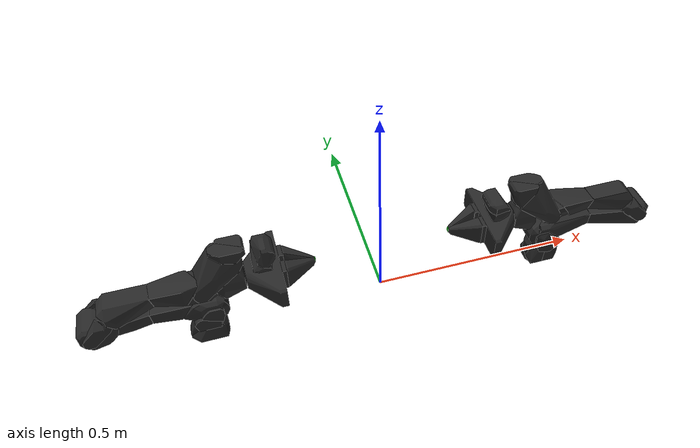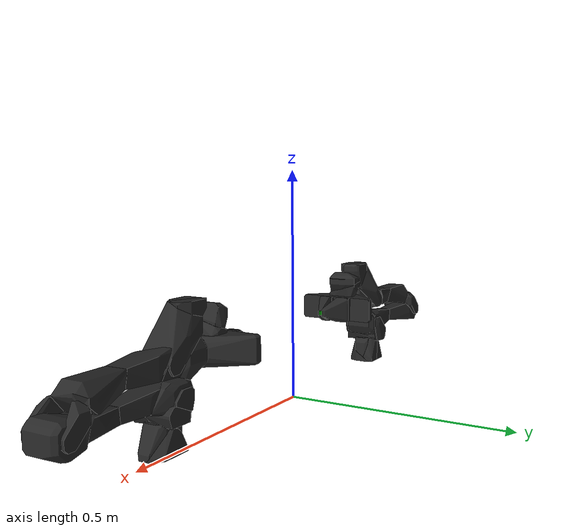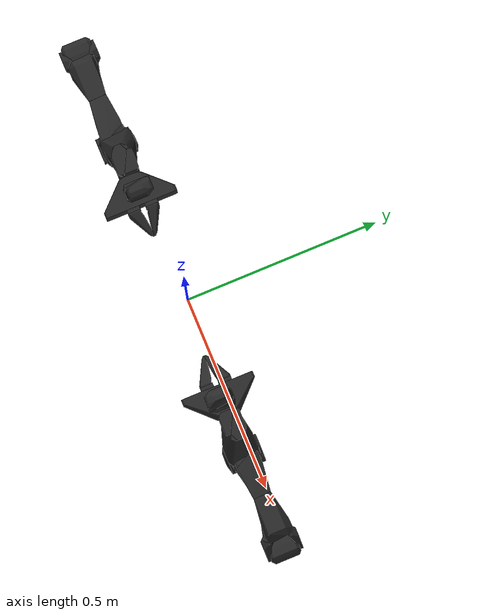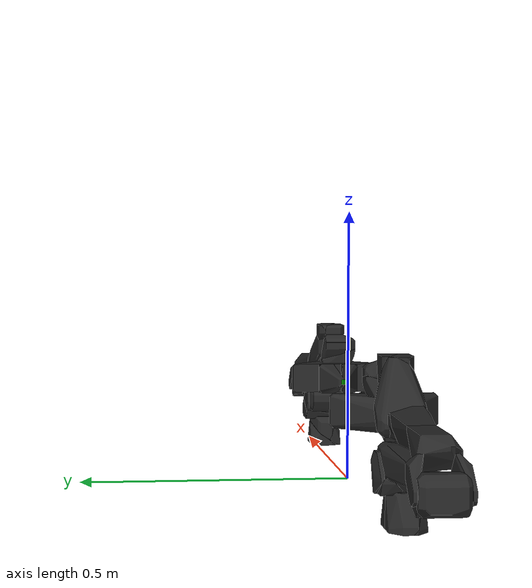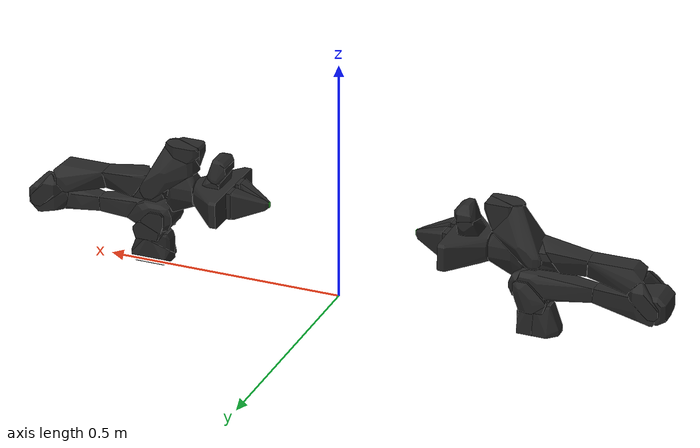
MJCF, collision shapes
<mujoco model="wxai_biarm">
  <compiler angle="radian"/>

  <size nkey="2"/>

  <visual>
    <headlight ambient="0.3 0.3 0.3" diffuse="0.8 0.8 0.8" specular="0 0 0"/>
    <scale forcewidth="0.03" contactwidth="0.05" contactheight="0.02"/>
  </visual>

  <default>
    <mesh maxhullvert="64"/>
    <default class="left/main">
      <default class="left/visual">
        <geom type="mesh" contype="0" conaffinity="0" group="1" density="0" material="trossen_material"/>
      </default>
      <default class="left/collision">
        <geom type="mesh" group="3" friction="1 0.005 0.0005" solref="0.01" rgba="0.15 0.15 0.15 1"/>
        <default class="left/gripper_collision">
          <geom condim="6"/>
        </default>
      </default>
    </default>
    <default class="right/main">
      <default class="right/visual">
        <geom type="mesh" contype="0" conaffinity="0" group="1" density="0" material="trossen_material"/>
      </default>
      <default class="right/collision">
        <geom type="mesh" group="3" friction="1 0.005 0.0005" solref="0.01" rgba="0.15 0.15 0.15 1"/>
        <default class="right/gripper_collision">
          <geom condim="6"/>
        </default>
      </default>
    </default>
  </default>

  <asset>
    <texture type="2d" colorspace="linear" name="left/trossen_BaseColor"
      file="assets/materials/1k_textures/trossen_BaseColor.png"/>
    <texture type="2d" colorspace="linear" name="right/trossen_BaseColor"
      file="assets/materials/1k_textures/trossen_BaseColor.png"/>
    <material name="left/trossen_material" texture="left/trossen_BaseColor"/>
    <material name="right/trossen_material" texture="right/trossen_BaseColor"/>
    <mesh name="left/base_link" content_type="model/obj" file="assets/meshes/wxai/base_link.obj"/>
    <mesh name="left/link_1" content_type="model/obj" file="assets/meshes/wxai/link_1.obj"/>
    <mesh name="left/link_2" content_type="model/obj" file="assets/meshes/wxai/link_2.obj"/>
    <mesh name="left/link_3" content_type="model/obj" file="assets/meshes/wxai/link_3.obj"/>
    <mesh name="left/link_4" content_type="model/obj" file="assets/meshes/wxai/link_4.obj"/>
    <mesh name="left/link_5" content_type="model/obj" file="assets/meshes/wxai/link_5.obj"/>
    <mesh name="left/link_6" content_type="model/obj" file="assets/meshes/wxai/link_6.obj"/>
    <mesh name="left/carriage_right" content_type="model/obj" file="assets/meshes/wxai/carriage_right.obj"/>
    <mesh name="left/carriage_left" content_type="model/obj" file="assets/meshes/wxai/carriage_left.obj"/>
    <mesh name="left/camera_mount_d405" content_type="model/obj" file="assets/meshes/d405/camera_mount_d405.obj"/>
    <mesh name="left/d405" content_type="model/stl" file="assets/meshes/d405/d405.stl" scale="0.001 0.001 0.001"/>
    <mesh name="left/gripper_left" content_type="model/obj" file="assets/meshes/wxai/gripper_left.obj"/>
    <mesh name="left/gripper_right" content_type="model/obj" file="assets/meshes/wxai/gripper_right.obj"/>
    <mesh name="left/base_link_collision" content_type="model/obj" file="assets/meshes/wxai/base_link_collision.obj"/>
    <mesh name="left/base_link_collision.001" content_type="model/obj"
      file="assets/meshes/wxai/base_link_collision.001.obj"/>
    <mesh name="left/base_link_collision.002" content_type="model/obj"
      file="assets/meshes/wxai/base_link_collision.002.obj"/>
    <mesh name="left/base_link_collision.003" content_type="model/obj"
      file="assets/meshes/wxai/base_link_collision.003.obj"/>
    <mesh name="left/camera_mount_d405_collision" content_type="model/obj"
      file="assets/meshes/d405/camera_mount_d405_collision.obj"/>
    <mesh name="left/camera_mount_d405_collision.001" content_type="model/obj"
      file="assets/meshes/d405/camera_mount_d405_collision.001.obj"/>
    <mesh name="left/carriage_left_collision" content_type="model/obj"
      file="assets/meshes/wxai/carriage_left_collision.obj"/>
    <mesh name="left/carriage_right_collision" content_type="model/obj"
      file="assets/meshes/wxai/carriage_right_collision.obj"/>
    <mesh name="left/gripper_left_collision" content_type="model/obj"
      file="assets/meshes/wxai/gripper_left_collision.obj"/>
    <mesh name="left/gripper_right_collision" content_type="model/obj"
      file="assets/meshes/wxai/gripper_right_collision.obj"/>
    <mesh name="left/link_1_collision" content_type="model/obj" file="assets/meshes/wxai/link_1_collision.obj"/>
    <mesh name="left/link_1_collision.001" content_type="model/obj" file="assets/meshes/wxai/link_1_collision.001.obj"/>
    <mesh name="left/link_1_collision.002" content_type="model/obj" file="assets/meshes/wxai/link_1_collision.002.obj"/>
    <mesh name="left/link_1_collision.003" content_type="model/obj" file="assets/meshes/wxai/link_1_collision.003.obj"/>
    <mesh name="left/link_2_collision" content_type="model/obj" file="assets/meshes/wxai/link_2_collision.obj"/>
    <mesh name="left/link_2_collision.001" content_type="model/obj" file="assets/meshes/wxai/link_2_collision.001.obj"/>
    <mesh name="left/link_2_collision.002" content_type="model/obj" file="assets/meshes/wxai/link_2_collision.002.obj"/>
    <mesh name="left/link_2_collision.003" content_type="model/obj" file="assets/meshes/wxai/link_2_collision.003.obj"/>
    <mesh name="left/link_3_collision" content_type="model/obj" file="assets/meshes/wxai/link_3_collision.obj"/>
    <mesh name="left/link_3_collision.001" content_type="model/obj" file="assets/meshes/wxai/link_3_collision.001.obj"/>
    <mesh name="left/link_3_collision.002" content_type="model/obj" file="assets/meshes/wxai/link_3_collision.002.obj"/>
    <mesh name="left/link_3_collision.003" content_type="model/obj" file="assets/meshes/wxai/link_3_collision.003.obj"/>
    <mesh name="left/link_3_collision.004" content_type="model/obj" file="assets/meshes/wxai/link_3_collision.004.obj"/>
    <mesh name="left/link_4_collision" content_type="model/obj" file="assets/meshes/wxai/link_4_collision.obj"/>
    <mesh name="left/link_4_collision.001" content_type="model/obj" file="assets/meshes/wxai/link_4_collision.001.obj"/>
    <mesh name="left/link_4_collision.002" content_type="model/obj" file="assets/meshes/wxai/link_4_collision.002.obj"/>
    <mesh name="left/link_5_collision" content_type="model/obj" file="assets/meshes/wxai/link_5_collision.obj"/>
    <mesh name="left/link_6_collision" content_type="model/obj" file="assets/meshes/wxai/link_6_collision.obj"/>
    <mesh name="right/base_link" content_type="model/obj" file="assets/meshes/wxai/base_link.obj"/>
    <mesh name="right/link_1" content_type="model/obj" file="assets/meshes/wxai/link_1.obj"/>
    <mesh name="right/link_2" content_type="model/obj" file="assets/meshes/wxai/link_2.obj"/>
    <mesh name="right/link_3" content_type="model/obj" file="assets/meshes/wxai/link_3.obj"/>
    <mesh name="right/link_4" content_type="model/obj" file="assets/meshes/wxai/link_4.obj"/>
    <mesh name="right/link_5" content_type="model/obj" file="assets/meshes/wxai/link_5.obj"/>
    <mesh name="right/link_6" content_type="model/obj" file="assets/meshes/wxai/link_6.obj"/>
    <mesh name="right/carriage_right" content_type="model/obj" file="assets/meshes/wxai/carriage_right.obj"/>
    <mesh name="right/carriage_left" content_type="model/obj" file="assets/meshes/wxai/carriage_left.obj"/>
    <mesh name="right/camera_mount_d405" content_type="model/obj" file="assets/meshes/d405/camera_mount_d405.obj"/>
    <mesh name="right/d405" content_type="model/stl" file="assets/meshes/d405/d405.stl" scale="0.001 0.001 0.001"/>
    <mesh name="right/gripper_left" content_type="model/obj" file="assets/meshes/wxai/gripper_left.obj"/>
    <mesh name="right/gripper_right" content_type="model/obj" file="assets/meshes/wxai/gripper_right.obj"/>
    <mesh name="right/base_link_collision" content_type="model/obj" file="assets/meshes/wxai/base_link_collision.obj"/>
    <mesh name="right/base_link_collision.001" content_type="model/obj"
      file="assets/meshes/wxai/base_link_collision.001.obj"/>
    <mesh name="right/base_link_collision.002" content_type="model/obj"
      file="assets/meshes/wxai/base_link_collision.002.obj"/>
    <mesh name="right/base_link_collision.003" content_type="model/obj"
      file="assets/meshes/wxai/base_link_collision.003.obj"/>
    <mesh name="right/camera_mount_d405_collision" content_type="model/obj"
      file="assets/meshes/d405/camera_mount_d405_collision.obj"/>
    <mesh name="right/camera_mount_d405_collision.001" content_type="model/obj"
      file="assets/meshes/d405/camera_mount_d405_collision.001.obj"/>
    <mesh name="right/carriage_left_collision" content_type="model/obj"
      file="assets/meshes/wxai/carriage_left_collision.obj"/>
    <mesh name="right/carriage_right_collision" content_type="model/obj"
      file="assets/meshes/wxai/carriage_right_collision.obj"/>
    <mesh name="right/gripper_left_collision" content_type="model/obj"
      file="assets/meshes/wxai/gripper_left_collision.obj"/>
    <mesh name="right/gripper_right_collision" content_type="model/obj"
      file="assets/meshes/wxai/gripper_right_collision.obj"/>
    <mesh name="right/link_1_collision" content_type="model/obj" file="assets/meshes/wxai/link_1_collision.obj"/>
    <mesh name="right/link_1_collision.001" content_type="model/obj"
      file="assets/meshes/wxai/link_1_collision.001.obj"/>
    <mesh name="right/link_1_collision.002" content_type="model/obj"
      file="assets/meshes/wxai/link_1_collision.002.obj"/>
    <mesh name="right/link_1_collision.003" content_type="model/obj"
      file="assets/meshes/wxai/link_1_collision.003.obj"/>
    <mesh name="right/link_2_collision" content_type="model/obj" file="assets/meshes/wxai/link_2_collision.obj"/>
    <mesh name="right/link_2_collision.001" content_type="model/obj"
      file="assets/meshes/wxai/link_2_collision.001.obj"/>
    <mesh name="right/link_2_collision.002" content_type="model/obj"
      file="assets/meshes/wxai/link_2_collision.002.obj"/>
    <mesh name="right/link_2_collision.003" content_type="model/obj"
      file="assets/meshes/wxai/link_2_collision.003.obj"/>
    <mesh name="right/link_3_collision" content_type="model/obj" file="assets/meshes/wxai/link_3_collision.obj"/>
    <mesh name="right/link_3_collision.001" content_type="model/obj"
      file="assets/meshes/wxai/link_3_collision.001.obj"/>
    <mesh name="right/link_3_collision.002" content_type="model/obj"
      file="assets/meshes/wxai/link_3_collision.002.obj"/>
    <mesh name="right/link_3_collision.003" content_type="model/obj"
      file="assets/meshes/wxai/link_3_collision.003.obj"/>
    <mesh name="right/link_3_collision.004" content_type="model/obj"
      file="assets/meshes/wxai/link_3_collision.004.obj"/>
    <mesh name="right/link_4_collision" content_type="model/obj" file="assets/meshes/wxai/link_4_collision.obj"/>
    <mesh name="right/link_4_collision.001" content_type="model/obj"
      file="assets/meshes/wxai/link_4_collision.001.obj"/>
    <mesh name="right/link_4_collision.002" content_type="model/obj"
      file="assets/meshes/wxai/link_4_collision.002.obj"/>
    <mesh name="right/link_5_collision" content_type="model/obj" file="assets/meshes/wxai/link_5_collision.obj"/>
    <mesh name="right/link_6_collision" content_type="model/obj" file="assets/meshes/wxai/link_6_collision.obj"/>
  </asset>

  <worldbody>
    <site name="left_attach" pos="-0.41 -0.019 0"/>
    <site name="right_attach" pos="0.41 -0.019 0" quat="0 0 0 1"/>
    <body name="left/base_link" pos="-0.41 -0.019 0">
      <inertial pos="-0.00014175 -5.228e-05 0.0317518" quat="0.708444 0.00673042 0.00910019 0.705677" mass="0.459699"
        diaginertia="0.000448963 0.000416701 0.000213926"/>
      <geom class="left/visual" material="left/trossen_material" mesh="left/base_link"/>
      <geom class="left/collision" mesh="left/base_link_collision"/>
      <geom class="left/collision" mesh="left/base_link_collision.001"/>
      <geom class="left/collision" mesh="left/base_link_collision.002"/>
      <geom class="left/collision" mesh="left/base_link_collision.003"/>
      <body name="left/link_1" pos="0 0 0.05725">
        <inertial pos="-0.00011075 0.00171176 0.0204459" quat="0.313955 0.305238 -0.643575 0.627752" mass="0.152704"
          diaginertia="0.000203432 0.000173907 8.3521e-05"/>
        <joint name="left/joint_0" pos="0 0 0" axis="0 0 1" range="-3.05433 3.05433" actuatorfrcrange="-27 27"
          armature="0.844846" damping="14.1737"/>
        <geom class="left/visual" material="left/trossen_material" mesh="left/link_1"/>
        <geom class="left/collision" mesh="left/link_1_collision"/>
        <geom class="left/collision" mesh="left/link_1_collision.001"/>
        <geom class="left/collision" mesh="left/link_1_collision.002"/>
        <geom class="left/collision" mesh="left/link_1_collision.003"/>
        <body name="left/link_2" pos="0.02 0 0.04625">
          <inertial pos="-0.131215 -0.00292583 0.00021345" quat="-0.00123582 0.706546 -0.00109575 0.707665"
            mass="1.15316" diaginertia="0.0179449 0.0173612 0.00102628"/>
          <joint name="left/joint_1" pos="0 0 0" axis="0 1 0" range="0 3.14159" actuatorfrcrange="-27 27"
            armature="0.094783" damping="8.0188"/>
          <geom class="left/visual" material="left/trossen_material" mesh="left/link_2"/>
          <geom class="left/collision" mesh="left/link_2_collision"/>
          <geom class="left/collision" mesh="left/link_2_collision.001"/>
          <geom class="left/collision" mesh="left/link_2_collision.002"/>
          <geom class="left/collision" mesh="left/link_2_collision.003"/>
          <body name="left/link_3" pos="-0.264 0 0">
            <inertial pos="0.180836 -0.0009409 0.0555494" quat="0.0103901 0.669684 -0.0033175 0.742566" mass="0.686666"
              diaginertia="0.00566898 0.00547578 0.00059316"/>
            <joint name="left/joint_2" pos="0 0 0" axis="0 -1 0" range="0 2.35619" actuatorfrcrange="-27 27"
              damping="0.725663" frictionloss="0.1"/>
            <geom class="left/visual" material="left/trossen_material" mesh="left/link_3"/>
            <geom class="left/collision" mesh="left/link_3_collision"/>
            <geom class="left/collision" mesh="left/link_3_collision.001"/>
            <geom class="left/collision" mesh="left/link_3_collision.002"/>
            <geom class="left/collision" mesh="left/link_3_collision.003"/>
            <geom class="left/collision" mesh="left/link_3_collision.004"/>
            <body name="left/link_4" pos="0.245 0 0.06">
              <inertial pos="0.0579784 0.00027145 0.0588445" quat="0.948688 0.0346237 0.307828 0.0635164"
                mass="0.457899" diaginertia="0.000670827 0.000661455 0.000288648"/>
              <joint name="left/joint_3" pos="0 0 0" axis="0 -1 0" range="-1.5708 1.5708" actuatorfrcrange="-7 7"
                armature="0.131812" damping="2.31571" frictionloss="0.004603"/>
              <geom class="left/visual" material="left/trossen_material" mesh="left/link_4"/>
              <geom class="left/collision" mesh="left/link_4_collision"/>
              <geom class="left/collision" mesh="left/link_4_collision.001"/>
              <geom class="left/collision" mesh="left/link_4_collision.002"/>
              <body name="left/link_5" pos="0.06775 0 0.0455">
                <inertial pos="0.00412447 -1.138e-05 -0.0428318" quat="0.496144 0.502128 0.503595 0.498098"
                  mass="0.366939" diaginertia="0.000320622 0.00026751 0.000189108"/>
                <joint name="left/joint_4" pos="0 0 0" axis="0 0 -1" range="-1.5708 1.5708" actuatorfrcrange="-7 7"
                  armature="0.138205" damping="2.36817"/>
                <geom class="left/visual" material="left/trossen_material" mesh="left/link_5"/>
                <geom class="left/collision" mesh="left/link_5_collision"/>
                <body name="left/link_6" pos="0.02895 0 -0.0455">
                  <inertial pos="0.0457277 -7.26e-06 1.402e-05" quat="0.500491 0.4997 -0.500266 0.499542"
                    mass="0.554693" diaginertia="0.001086 0.000824291 0.000487589"/>
                  <joint name="left/joint_5" pos="0 0 0" axis="1 0 0" range="-3.14159 3.14159" actuatorfrcrange="-7 7"
                    armature="0.039831" damping="0.684856"/>
                  <geom class="left/visual" material="left/trossen_material" mesh="left/link_6"/>
                  <geom class="left/collision" mesh="left/link_6_collision"/>
                  <site name="left/ee_gripper_link" pos="0.156062 0 0" size="0.01" group="5" rgba="1 0 0 1"/>
                  <body name="left/camera_mount_d405" pos="0.012 0 0">
                    <inertial pos="0.0302338 0.00679835 0.0500669" quat="0.501514 0.851949 0.0948108 -0.116954"
                      mass="0.0451801" diaginertia="3.52003e-05 2.55005e-05 1.80592e-05"/>
                    <geom class="left/visual" material="left/trossen_material" mesh="left/camera_mount_d405"/>
                    <geom class="left/collision" mesh="left/camera_mount_d405_collision"/>
                    <geom class="left/collision" mesh="left/camera_mount_d405_collision.001"/>
                    <body name="left/camera_link" pos="0.04665 0.009 0.054272" quat="0.984808 0 0.173648 0">
                      <inertial pos="0 0 0" mass="0.072" diaginertia="2.117e-05 1.3758e-05 1.3758e-05"/>
                      <geom class="left/visual" pos="0.0038 -0.009 0" quat="0.5 0.5 0.5 0.5"
                        material="left/trossen_material" mesh="left/d405"/>
                      <geom class="left/collision" size="0.0115 0.021 0.021" pos="-0.0078 -0.009 0" type="box"/>
                      <camera name="left/wrist_cam" pos="0 0 0" quat="0.5 0.5 -0.5 -0.5" resolution="1280 720"
                        sensorsize="0.003896 0.00214" focal="0.00193 0.00193"/>
                    </body>
                  </body>
                  <body name="left/carriage_right" pos="0.0865 -0.023 0">
                    <inertial pos="-0.00889602 0.00403514 0.00457901" quat="0.616415 0.778591 0.0236991 -0.115186"
                      mass="0.0503631" diaginertia="1.77614e-05 1.40157e-05 5.27289e-06"/>
                    <joint name="left/right_carriage_joint" pos="0 0 0" axis="0 -1 0" type="slide" range="-0.01 0.045"
                      actuatorfrcrange="-400 400" armature="2.57487" damping="2.37396" frictionloss="0.1"/>
                    <geom class="left/visual" material="left/trossen_material" mesh="left/carriage_right"/>
                    <geom class="left/collision" mesh="left/carriage_right_collision"/>
                    <body name="left/gripper_right">
                      <inertial pos="0.0189399 0.00901216 -0.00215461" quat="0.382396 0.419236 0.596564 0.567562"
                        mass="0.0309079" diaginertia="1.60975e-05 1.18601e-05 6.44247e-06"/>
                      <geom class="left/visual" material="left/trossen_material" mesh="left/gripper_right"/>
                      <geom class="left/gripper_collision" pos="0 -0.00154 0" quat="1 0 0 0"
                        mesh="left/gripper_right_collision"/>
                      <geom class="left/gripper_collision" size="0.005 0.016 0.028" pos="-0.004 0 0" type="box"/>
                      <geom name="left/gripper_right_pad" class="left/gripper_collision" size="0.008 0.002 0.005"
                        pos="0.0615 0.021 0" type="box" group="4" rgba="0 0.5 0 0.5"/>
                      <geom class="left/gripper_collision" size="0.001" pos="0.062 0.0223 -0.005" type="sphere"/>
                      <geom class="left/gripper_collision" size="0.001" pos="0.067 0.0223 0" type="sphere"/>
                      <geom class="left/gripper_collision" size="0.001" pos="0.062 0.0223 0.005" type="sphere"/>
                    </body>
                  </body>
                  <body name="left/carriage_left" pos="0.0865 0.023 0">
                    <inertial pos="-0.00889602 -0.00403515 -0.00457908" quat="0.616415 0.778591 0.0236991 -0.115186"
                      mass="0.0503631" diaginertia="1.77614e-05 1.40157e-05 5.27289e-06"/>
                    <joint name="left/left_carriage_joint" pos="0 0 0" axis="0 1 0" type="slide" range="-0.01 0.045"
                      actuatorfrcrange="-400 400" armature="0.0005" damping="10.7" frictionloss="0.018"/>
                    <geom class="left/visual" material="left/trossen_material" mesh="left/carriage_left"/>
                    <geom class="left/collision" mesh="left/carriage_left_collision"/>
                    <body name="left/gripper_left">
                      <inertial pos="0.0189399 -0.00901223 -0.00215453" quat="0.567562 0.596564 0.419236 0.382396"
                        mass="0.0309079" diaginertia="1.60975e-05 1.18601e-05 6.44247e-06"/>
                      <geom class="left/visual" material="left/trossen_material" mesh="left/gripper_left"/>
                      <geom class="left/gripper_collision" pos="0 0.00154 0" quat="1 0 0 0"
                        mesh="left/gripper_left_collision"/>
                      <geom class="left/gripper_collision" size="0.005 0.016 0.028" pos="-0.004 0 0" type="box"/>
                      <geom name="left/gripper_left_pad" class="left/gripper_collision" size="0.008 0.002 0.005"
                        pos="0.0615 -0.021 0" type="box" group="4" rgba="0 0.5 0 0.5"/>
                      <geom class="left/gripper_collision" size="0.001" pos="0.062 -0.0223 -0.005" type="sphere"/>
                      <geom class="left/gripper_collision" size="0.001" pos="0.067 -0.0223 0" type="sphere"/>
                      <geom class="left/gripper_collision" size="0.001" pos="0.062 -0.0223 0.005" type="sphere"/>
                    </body>
                  </body>
                </body>
              </body>
            </body>
          </body>
        </body>
      </body>
    </body>
    <body name="right/base_link" pos="0.41 -0.019 0" quat="0 0 0 1">
      <inertial pos="-0.00014175 -5.228e-05 0.0317518" quat="0.708444 0.00673042 0.00910019 0.705677" mass="0.459699"
        diaginertia="0.000448963 0.000416701 0.000213926"/>
      <geom class="right/visual" material="right/trossen_material" mesh="right/base_link"/>
      <geom class="right/collision" mesh="right/base_link_collision"/>
      <geom class="right/collision" mesh="right/base_link_collision.001"/>
      <geom class="right/collision" mesh="right/base_link_collision.002"/>
      <geom class="right/collision" mesh="right/base_link_collision.003"/>
      <body name="right/link_1" pos="0 0 0.05725">
        <inertial pos="-0.00011075 0.00171176 0.0204459" quat="0.313955 0.305238 -0.643575 0.627752" mass="0.152704"
          diaginertia="0.000203432 0.000173907 8.3521e-05"/>
        <joint name="right/joint_0" pos="0 0 0" axis="0 0 1" range="-3.05433 3.05433" actuatorfrcrange="-27 27"
          armature="0.844846" damping="14.1737"/>
        <geom class="right/visual" material="right/trossen_material" mesh="right/link_1"/>
        <geom class="right/collision" mesh="right/link_1_collision"/>
        <geom class="right/collision" mesh="right/link_1_collision.001"/>
        <geom class="right/collision" mesh="right/link_1_collision.002"/>
        <geom class="right/collision" mesh="right/link_1_collision.003"/>
        <body name="right/link_2" pos="0.02 0 0.04625">
          <inertial pos="-0.131215 -0.00292583 0.00021345" quat="-0.00123582 0.706546 -0.00109575 0.707665"
            mass="1.15316" diaginertia="0.0179449 0.0173612 0.00102628"/>
          <joint name="right/joint_1" pos="0 0 0" axis="0 1 0" range="0 3.14159" actuatorfrcrange="-27 27"
            armature="0.094783" damping="8.0188"/>
          <geom class="right/visual" material="right/trossen_material" mesh="right/link_2"/>
          <geom class="right/collision" mesh="right/link_2_collision"/>
          <geom class="right/collision" mesh="right/link_2_collision.001"/>
          <geom class="right/collision" mesh="right/link_2_collision.002"/>
          <geom class="right/collision" mesh="right/link_2_collision.003"/>
          <body name="right/link_3" pos="-0.264 0 0">
            <inertial pos="0.180836 -0.0009409 0.0555494" quat="0.0103901 0.669684 -0.0033175 0.742566" mass="0.686666"
              diaginertia="0.00566898 0.00547578 0.00059316"/>
            <joint name="right/joint_2" pos="0 0 0" axis="0 -1 0" range="0 2.35619" actuatorfrcrange="-27 27"
              damping="0.725663" frictionloss="0.1"/>
            <geom class="right/visual" material="right/trossen_material" mesh="right/link_3"/>
            <geom class="right/collision" mesh="right/link_3_collision"/>
            <geom class="right/collision" mesh="right/link_3_collision.001"/>
            <geom class="right/collision" mesh="right/link_3_collision.002"/>
            <geom class="right/collision" mesh="right/link_3_collision.003"/>
            <geom class="right/collision" mesh="right/link_3_collision.004"/>
            <body name="right/link_4" pos="0.245 0 0.06">
              <inertial pos="0.0579784 0.00027145 0.0588445" quat="0.948688 0.0346237 0.307828 0.0635164"
                mass="0.457899" diaginertia="0.000670827 0.000661455 0.000288648"/>
              <joint name="right/joint_3" pos="0 0 0" axis="0 -1 0" range="-1.5708 1.5708" actuatorfrcrange="-7 7"
                armature="0.131812" damping="2.31571" frictionloss="0.004603"/>
              <geom class="right/visual" material="right/trossen_material" mesh="right/link_4"/>
              <geom class="right/collision" mesh="right/link_4_collision"/>
              <geom class="right/collision" mesh="right/link_4_collision.001"/>
              <geom class="right/collision" mesh="right/link_4_collision.002"/>
              <body name="right/link_5" pos="0.06775 0 0.0455">
                <inertial pos="0.00412447 -1.138e-05 -0.0428318" quat="0.496144 0.502128 0.503595 0.498098"
                  mass="0.366939" diaginertia="0.000320622 0.00026751 0.000189108"/>
                <joint name="right/joint_4" pos="0 0 0" axis="0 0 -1" range="-1.5708 1.5708" actuatorfrcrange="-7 7"
                  armature="0.138205" damping="2.36817"/>
                <geom class="right/visual" material="right/trossen_material" mesh="right/link_5"/>
                <geom class="right/collision" mesh="right/link_5_collision"/>
                <body name="right/link_6" pos="0.02895 0 -0.0455">
                  <inertial pos="0.0457277 -7.26e-06 1.402e-05" quat="0.500491 0.4997 -0.500266 0.499542"
                    mass="0.554693" diaginertia="0.001086 0.000824291 0.000487589"/>
                  <joint name="right/joint_5" pos="0 0 0" axis="1 0 0" range="-3.14159 3.14159" actuatorfrcrange="-7 7"
                    armature="0.039831" damping="0.684856"/>
                  <geom class="right/visual" material="right/trossen_material" mesh="right/link_6"/>
                  <geom class="right/collision" mesh="right/link_6_collision"/>
                  <site name="right/ee_gripper_link" pos="0.156062 0 0" size="0.01" group="5" rgba="1 0 0 1"/>
                  <body name="right/camera_mount_d405" pos="0.012 0 0">
                    <inertial pos="0.0302338 0.00679835 0.0500669" quat="0.501514 0.851949 0.0948108 -0.116954"
                      mass="0.0451801" diaginertia="3.52003e-05 2.55005e-05 1.80592e-05"/>
                    <geom class="right/visual" material="right/trossen_material" mesh="right/camera_mount_d405"/>
                    <geom class="right/collision" mesh="right/camera_mount_d405_collision"/>
                    <geom class="right/collision" mesh="right/camera_mount_d405_collision.001"/>
                    <body name="right/camera_link" pos="0.04665 0.009 0.054272" quat="0.984808 0 0.173648 0">
                      <inertial pos="0 0 0" mass="0.072" diaginertia="2.117e-05 1.3758e-05 1.3758e-05"/>
                      <geom class="right/visual" pos="0.0038 -0.009 0" quat="0.5 0.5 0.5 0.5"
                        material="right/trossen_material" mesh="right/d405"/>
                      <geom class="right/collision" size="0.0115 0.021 0.021" pos="-0.0078 -0.009 0" type="box"/>
                      <camera name="right/wrist_cam" pos="0 0 0" quat="0.5 0.5 -0.5 -0.5" resolution="1280 720"
                        sensorsize="0.003896 0.00214" focal="0.00193 0.00193"/>
                    </body>
                  </body>
                  <body name="right/carriage_right" pos="0.0865 -0.023 0">
                    <inertial pos="-0.00889602 0.00403514 0.00457901" quat="0.616415 0.778591 0.0236991 -0.115186"
                      mass="0.0503631" diaginertia="1.77614e-05 1.40157e-05 5.27289e-06"/>
                    <joint name="right/right_carriage_joint" pos="0 0 0" axis="0 -1 0" type="slide" range="-0.01 0.045"
                      actuatorfrcrange="-400 400" armature="2.57487" damping="2.37396" frictionloss="0.1"/>
                    <geom class="right/visual" material="right/trossen_material" mesh="right/carriage_right"/>
                    <geom class="right/collision" mesh="right/carriage_right_collision"/>
                    <body name="right/gripper_right">
                      <inertial pos="0.0189399 0.00901216 -0.00215461" quat="0.382396 0.419236 0.596564 0.567562"
                        mass="0.0309079" diaginertia="1.60975e-05 1.18601e-05 6.44247e-06"/>
                      <geom class="right/visual" material="right/trossen_material" mesh="right/gripper_right"/>
                      <geom class="right/gripper_collision" pos="0 -0.00154 0" quat="1 0 0 0"
                        mesh="right/gripper_right_collision"/>
                      <geom class="right/gripper_collision" size="0.005 0.016 0.028" pos="-0.004 0 0" type="box"/>
                      <geom name="right/gripper_right_pad" class="right/gripper_collision" size="0.008 0.002 0.005"
                        pos="0.0615 0.021 0" type="box" group="4" rgba="0 0.5 0 0.5"/>
                      <geom class="right/gripper_collision" size="0.001" pos="0.062 0.0223 -0.005" type="sphere"/>
                      <geom class="right/gripper_collision" size="0.001" pos="0.067 0.0223 0" type="sphere"/>
                      <geom class="right/gripper_collision" size="0.001" pos="0.062 0.0223 0.005" type="sphere"/>
                    </body>
                  </body>
                  <body name="right/carriage_left" pos="0.0865 0.023 0">
                    <inertial pos="-0.00889602 -0.00403515 -0.00457908" quat="0.616415 0.778591 0.0236991 -0.115186"
                      mass="0.0503631" diaginertia="1.77614e-05 1.40157e-05 5.27289e-06"/>
                    <joint name="right/left_carriage_joint" pos="0 0 0" axis="0 1 0" type="slide" range="-0.01 0.045"
                      actuatorfrcrange="-400 400" armature="0.0005" damping="10.7" frictionloss="0.018"/>
                    <geom class="right/visual" material="right/trossen_material" mesh="right/carriage_left"/>
                    <geom class="right/collision" mesh="right/carriage_left_collision"/>
                    <body name="right/gripper_left">
                      <inertial pos="0.0189399 -0.00901223 -0.00215453" quat="0.567562 0.596564 0.419236 0.382396"
                        mass="0.0309079" diaginertia="1.60975e-05 1.18601e-05 6.44247e-06"/>
                      <geom class="right/visual" material="right/trossen_material" mesh="right/gripper_left"/>
                      <geom class="right/gripper_collision" pos="0 0.00154 0" quat="1 0 0 0"
                        mesh="right/gripper_left_collision"/>
                      <geom class="right/gripper_collision" size="0.005 0.016 0.028" pos="-0.004 0 0" type="box"/>
                      <geom name="right/gripper_left_pad" class="right/gripper_collision" size="0.008 0.002 0.005"
                        pos="0.0615 -0.021 0" type="box" group="4" rgba="0 0.5 0 0.5"/>
                      <geom class="right/gripper_collision" size="0.001" pos="0.062 -0.0223 -0.005" type="sphere"/>
                      <geom class="right/gripper_collision" size="0.001" pos="0.067 -0.0223 0" type="sphere"/>
                      <geom class="right/gripper_collision" size="0.001" pos="0.062 -0.0223 0.005" type="sphere"/>
                    </body>
                  </body>
                </body>
              </body>
            </body>
          </body>
        </body>
      </body>
    </body>
  </worldbody>

  <contact>
    <exclude name="left_base_link_link_1" body1="left/base_link" body2="left/link_1"/>
    <exclude name="left_link_3_link_5" body1="left/link_3" body2="left/link_5"/>
    <exclude name="right_base_link_link_1" body1="right/base_link" body2="right/link_1"/>
    <exclude name="right_link_3_link_5" body1="right/link_3" body2="right/link_5"/>
  </contact>

  <actuator>
    <general name="left/joint_0" joint="left/joint_0" ctrlrange="-3.05433 3.05433" forcerange="-35 35" biastype="affine"
      gainprm="65.0922" biasprm="0 -65.0922"/>
    <general name="left/joint_1" joint="left/joint_1" ctrlrange="0 3.14159" forcerange="-144 144" biastype="affine"
      gainprm="83.6987" biasprm="0 -83.6987"/>
    <general name="left/joint_2" joint="left/joint_2" ctrlrange="0 2.35619" forcerange="-59 59" biastype="affine"
      gainprm="115.808" biasprm="0 -115.808"/>
    <general name="left/joint_3" joint="left/joint_3" ctrlrange="-1.5708 1.5708" forcerange="-22 22" biastype="affine"
      gainprm="45.9726" biasprm="0 -45.9726"/>
    <general name="left/joint_4" joint="left/joint_4" ctrlrange="-1.5708 1.5708" forcerange="-35 35" biastype="affine"
      gainprm="11.3646" biasprm="0 -11.3646"/>
    <general name="left/joint_5" joint="left/joint_5" ctrlrange="-3.14159 3.14159" forcerange="-35 35" biastype="affine"
      gainprm="4.38885" biasprm="0 -4.38885"/>
    <general name="left/right_carriage_joint" joint="left/right_carriage_joint" ctrlrange="-0.002 0.045"
      forcerange="-35 35" biastype="affine" gainprm="339.018" biasprm="0 -339.018"/>
    <general name="right/joint_0" joint="right/joint_0" ctrlrange="-3.05433 3.05433" forcerange="-35 35"
      biastype="affine" gainprm="65.0922" biasprm="0 -65.0922"/>
    <general name="right/joint_1" joint="right/joint_1" ctrlrange="0 3.14159" forcerange="-144 144" biastype="affine"
      gainprm="83.6987" biasprm="0 -83.6987"/>
    <general name="right/joint_2" joint="right/joint_2" ctrlrange="0 2.35619" forcerange="-59 59" biastype="affine"
      gainprm="115.808" biasprm="0 -115.808"/>
    <general name="right/joint_3" joint="right/joint_3" ctrlrange="-1.5708 1.5708" forcerange="-22 22" biastype="affine"
      gainprm="45.9726" biasprm="0 -45.9726"/>
    <general name="right/joint_4" joint="right/joint_4" ctrlrange="-1.5708 1.5708" forcerange="-35 35" biastype="affine"
      gainprm="11.3646" biasprm="0 -11.3646"/>
    <general name="right/joint_5" joint="right/joint_5" ctrlrange="-3.14159 3.14159" forcerange="-35 35"
      biastype="affine" gainprm="4.38885" biasprm="0 -4.38885"/>
    <general name="right/right_carriage_joint" joint="right/right_carriage_joint" ctrlrange="-0.002 0.045"
      forcerange="-35 35" biastype="affine" gainprm="339.018" biasprm="0 -339.018"/>
  </actuator>

  <keyframe>
    <key name="left/" time="199.554"
      qpos="0 -0.00231776 1.10539 0.652472 -0.000250995 0.000167313 0.02178 0.0217803 0 0 0 0 0 0 0 0"
      ctrl="0 0 1.10741 0.644028 0 0 0.02178 0 0 0 0 0 0 0"/>
    <key name="right/" time="199.554"
      qpos="0 0 0 0 0 0 0 0 0 -0.00231776 1.10539 0.652472 -0.000250995 0.000167313 0.02178 0.0217803"
      ctrl="0 0 0 0 0 0 0 0 0 1.10741 0.644028 0 0 0.02178"/>
  </keyframe>

  <equality>
    <joint joint1="left/left_carriage_joint" joint2="left/right_carriage_joint" polycoef="0 1 0 0 0"/>
    <joint joint1="right/left_carriage_joint" joint2="right/right_carriage_joint" polycoef="0 1 0 0 0"/>
  </equality>
</mujoco>
